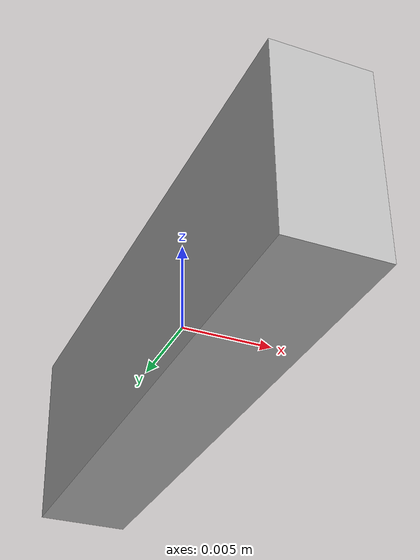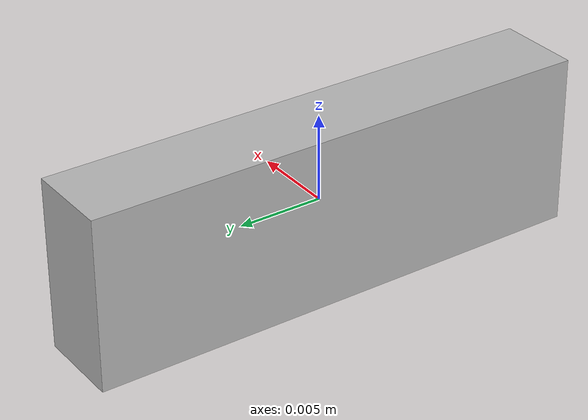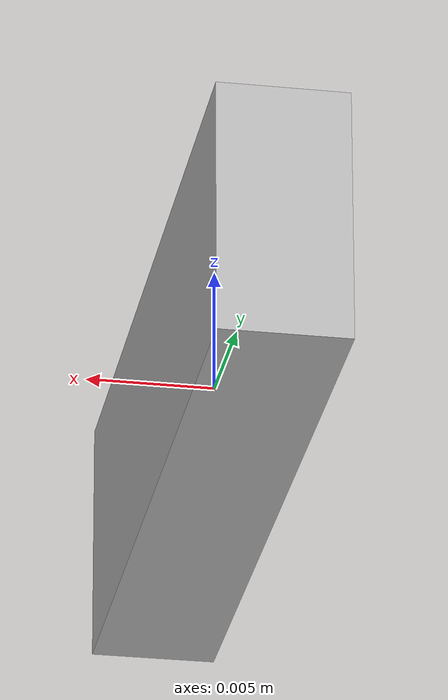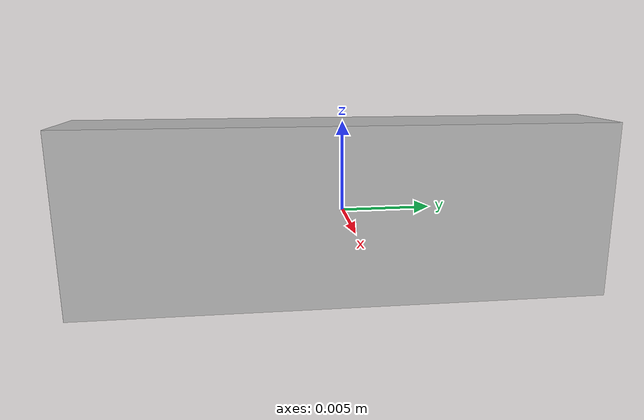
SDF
<?xml version="1.0" ?>
<sdf version="1.5">

  <model name="r200">

    <link name="link">
    <pose frame=''>0 0 0 0 -0 0</pose>
      <inertial>
        <mass>0.05</mass>
        <inertia>
          <ixx>4.16666666667e-06</ixx>
          <iyy>5.20833333333e-07</iyy>
          <izz>3.85416666667e-06</izz>
        </inertia>
      </inertial>

      <visual name="visual">
      <pose frame=''>0 0 0 0 -0 0</pose>
        <geometry>
          <box>
            <size>0.005 0.03 0.01</size>
          </box>
        </geometry>
      </visual>

      <collision name="collision">
        <geometry>
          <box>
            <size>0.005 0.03 0.01</size>
          </box>
        </geometry>
      </collision>

      <sensor type="depth" name="r200_sensor">
        <always_on>true</always_on>
        <update_rate>3.0</update_rate>
        <visualize>true</visualize>
        <camera name="head">
          <horizontal_fov>1.3962634</horizontal_fov>
          <image>
            <width>640</width>
            <height>480</height>
            <format>R8G8B8</format>
          </image>
          <depth_camera>
            <output>1</output>
          </depth_camera>
          <clip>
            <near>0.02</near>
            <far>300</far>
          </clip>
          <noise>
            <type>gaussian</type>
            <!-- Noise is sampled independently per pixel on each frame.
                 That pixel's noise value is added to each of its color
                 channels, which at that point lie in the range [0,1]. -->
            <mean>0.0</mean>
            <stddev>0.007</stddev>
          </noise>
        </camera>

        <plugin name="r200_controller" filename="libgazebo_ros_openni_kinect.so">
          <robotNamespace/>
          <baseline>0.2</baseline>
          <alwaysOn>true</alwaysOn>
          <updateRate>1.0</updateRate>
          <cameraName>r200_ir</cameraName>
          <frameName>r200</frameName>
          <pointCloudCutoff>0.5</pointCloudCutoff>
          <distortionK1>0.00000001</distortionK1>
          <distortionK2>0.00000001</distortionK2>
          <distortionK3>0.00000001</distortionK3>
          <distortionT1>0.00000001</distortionT1>
          <distortionT2>0.00000001</distortionT2>
          <CxPrime>0</CxPrime>
          <Cx>0</Cx>
          <Cy>0</Cy>
          <focalLength>0</focalLength>
          <hackBaseline>0</hackBaseline>
        </plugin>
        <visualize>true</visualize>
      </sensor>
    </link>
  </model>

</sdf>

<!-- vim: set et ft=xml fenc=utf-8 ff=unix sts=0 sw=2 ts=2 : -->
